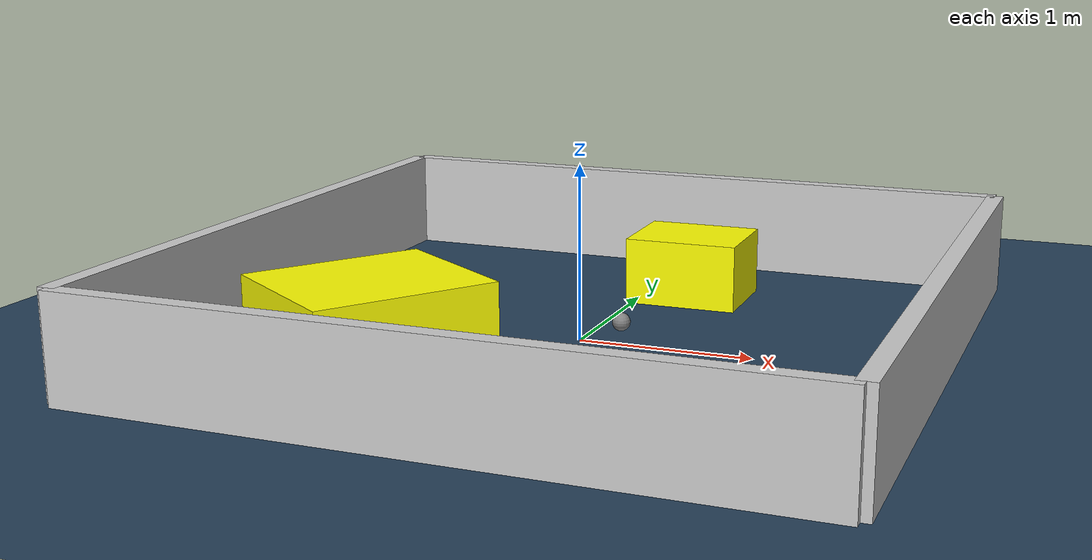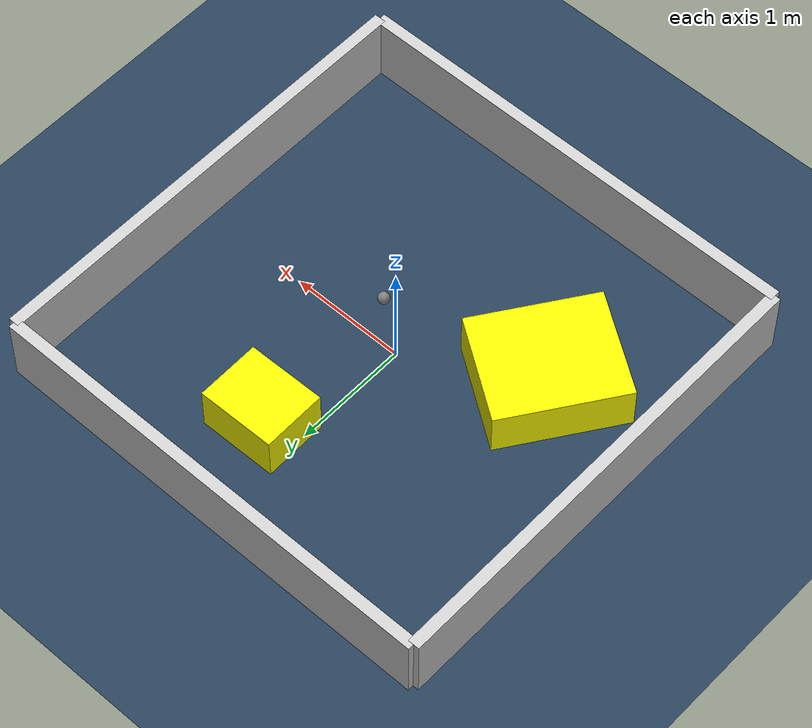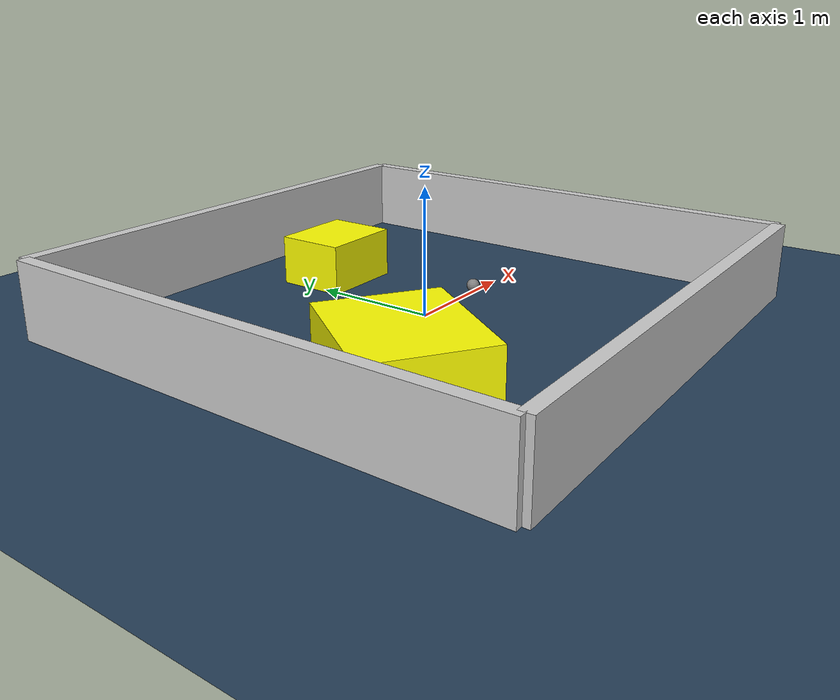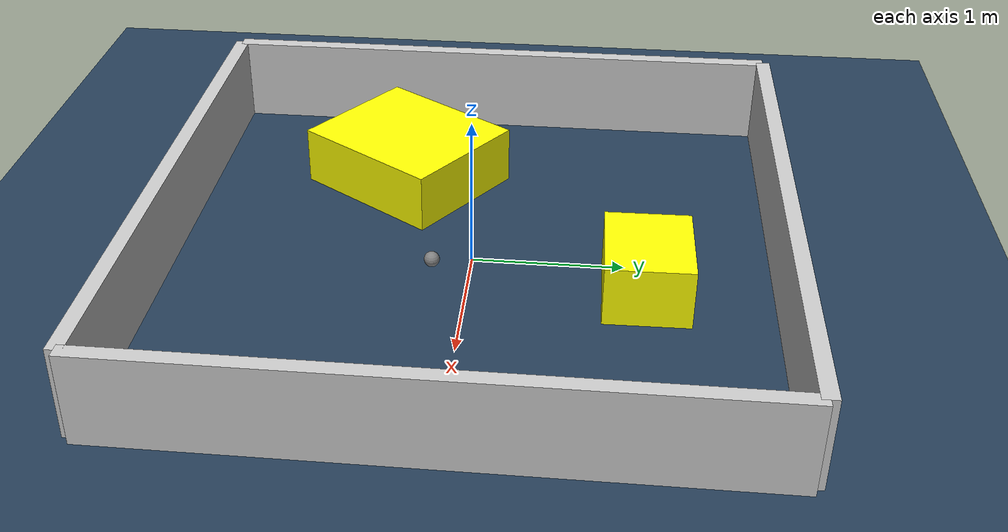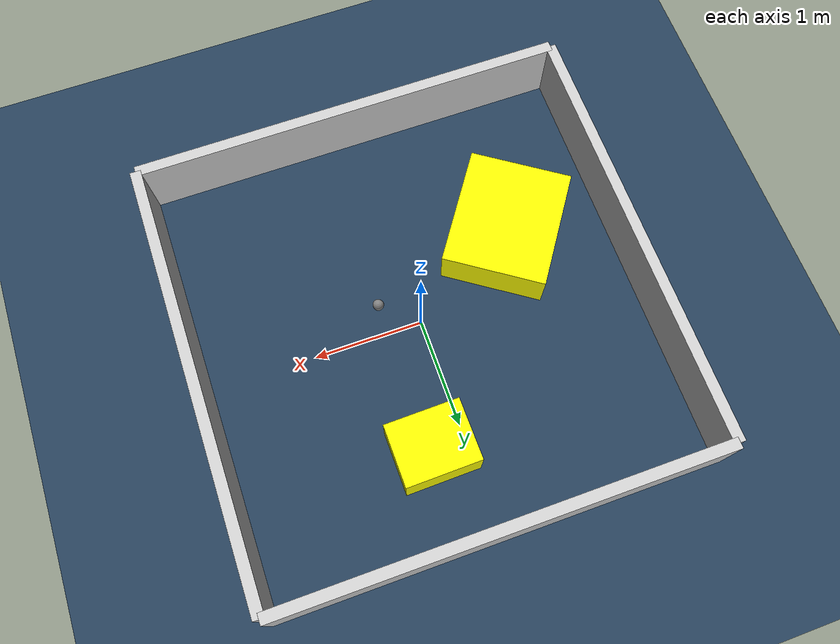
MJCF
<?xml version="1.0" ?>
<mujoco model="generated_environment">
  <option timestep="0.01" integrator="RK4" cone="elliptic"/>
  <default>
    <geom density="1"/>
  </default>
  <asset>
    <texture builtin="gradient" height="3072" rgb1="0.3 0.5 0.7" rgb2="0 0 0" type="skybox" width="512"/>
    <texture builtin="checker" height="300" mark="edge" markrgb="0.8 0.8 0.8" name="groundplane" rgb1="0.2 0.3 0.4" rgb2="0.1 0.2 0.3" type="2d" width="300"/>
    <material name="groundplane" reflectance="0.2" texrepeat="5 5" texture="groundplane" texuniform="true"/>
    <material name="robot" rgba="0.0 1.0 0.0 1"/>
  </asset>
  <worldbody>
    <light dir="0 0 -1" directional="true" pos="0 0 1.5"/>
    <geom condim="4" friction="1.0 0.005 0.001" material="groundplane" name="floor" size="0 0 0.05" type="plane"/>
    <body name="walls">
      <geom name="wall_1" condim="4" pos="-2.0 0.0 0.3" rgba="0.800000011920929 0.800000011920929 0.800000011920929 1.0" size="0.05 2.0 0.3" type="box"/>
      <geom name="wall_2" condim="4" pos="2.0 0.0 0.3" rgba="0.800000011920929 0.800000011920929 0.800000011920929 1.0" size="0.05 2.0 0.3" type="box"/>
      <geom name="wall_3" condim="4" pos="0.0 -2.0 0.3" rgba="0.800000011920929 0.800000011920929 0.800000011920929 1.0" size="2.0 0.05 0.3" type="box"/>
      <geom name="wall_4" condim="4" pos="0.0 2.0 0.3" rgba="0.800000011920929 0.800000011920929 0.800000011920929 1.0" size="2.0 0.05 0.3" type="box"/>
    </body>
    <body name="robot">
      <joint name="joint_x" type="slide" pos="0 0 0" axis="1 0 0"/>
      <joint name="joint_y" type="slide" pos="0 0 0" axis="0 1 0"/>
      <geom name="robot" type="sphere" pos="0.3265625505067833 -0.22204109007686634 0.2" size="0.05" mass="5." friction="1.0 0.005 0.0001" condim="4"/>
      <site name="sensor_ball"/>
    </body>
    <body name="obstacle_1_movable">
      <geom name="obstacle_1_movable" condim="4" pos="-1.0252051837567029 -0.5624415246062455 0.2" euler="0 0 55.4715457467803" friction="1.0 0.005 0.001" rgba="1 1 0 1" size="0.5499749782723794 0.47020106056272193 0.2" type="box" mass="0.1"/>
      <joint type="free"/>
    </body>
    <body name="obstacle_2_movable">
      <geom name="obstacle_2_movable" condim="4" pos="0.30093251822584355 1.1390268092614937 0.2" euler="0 0 180.81267884942775" friction="1.0 0.005 0.001" rgba="1 1 0 1" size="0.33906346640101703 0.2784836387515509 0.2" type="box" mass="0.1"/>
      <joint type="free"/>
    </body>
  </worldbody>
  <actuator>
    <motor name="actuator_x" joint="joint_x" gear="1" ctrlrange="-1 1"/>
    <motor name="actuator_y" joint="joint_y" gear="1" ctrlrange="-1 1"/>
  </actuator>
</mujoco>
